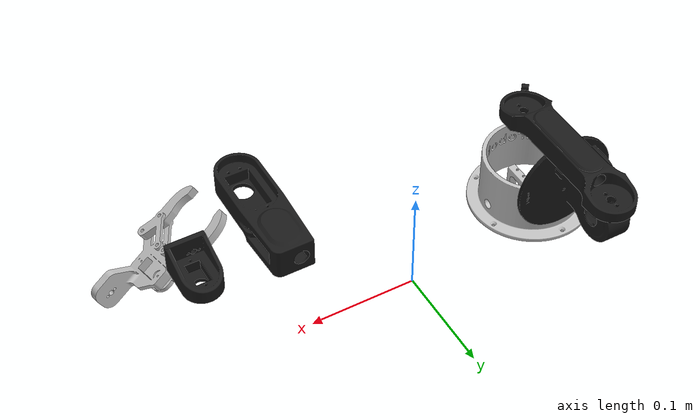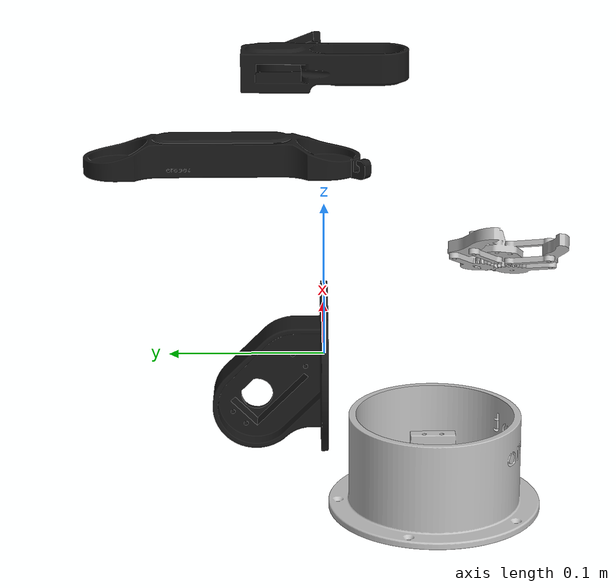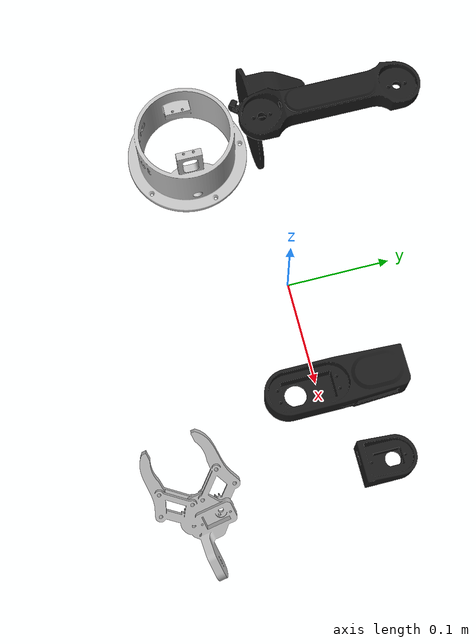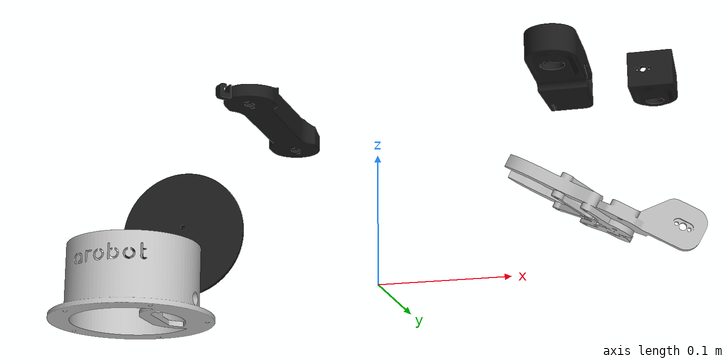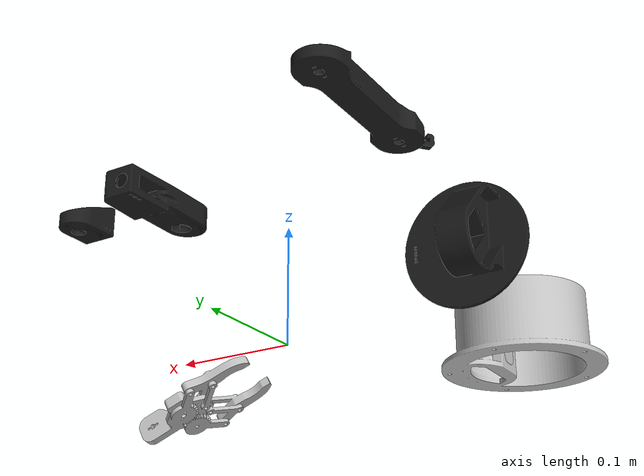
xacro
<?xml version="1.0"?>

<robot name="bot_6dof"
       xmlns:xacro="http://www.ros.org/wiki/xacro">

  <!-- MATERIALS -->

  <material name="black">
    <color rgba="0.1 0.1 0.1 1.0"/>
  </material>

  <material name="silver">
    <color rgba="0.75 0.75 0.75 1.0"/>
  </material>

  <!-- BASE LINK -->

  <link name="base_link">

    <visual>

      <origin xyz="0 0 0"
              rpy="0 0 0"/>

      <geometry>
        <mesh filename="package://bot_description/meshes/base_link.stl"
              scale="0.001 0.001 0.001"/>
      </geometry>

      <material name="silver"/>

    </visual>

  </link>

  <!-- SHOULDER LINK -->

  <link name="shoulder_link">

    <visual>

      <!-- reset mesh offset -->
      <origin xyz="0 0 0"
              rpy="0 0 0"/>

      <geometry>
        <mesh filename="package://bot_description/meshes/shoulder_link.stl"
              scale="0.001 0.001 0.001"/>
      </geometry>

      <material name="black"/>

    </visual>

  </link>

  <!-- UPPER ARM -->

  <link name="upper_arm_link">

    <visual>

      <!-- reset mesh offset -->
      <origin xyz="0 0 0"
              rpy="0 0 0"/>

      <geometry>
        <mesh filename="package://bot_description/meshes/upper_arm_link.stl"
              scale="0.001 0.001 0.001"/>
      </geometry>

      <material name="black"/>

    </visual>

  </link>

  <!-- FOREARM -->

  <link name="forearm_link">

    <visual>

      <!-- reset mesh offset -->
      <origin xyz="0 0 0"
              rpy="0 0 0"/>

      <geometry>
        <mesh filename="package://bot_description/meshes/forearm_link.stl"
              scale="0.001 0.001 0.001"/>
      </geometry>

      <material name="black"/>

    </visual>

  </link>

  <!-- WRIST -->

  <link name="wrist_link">

    <visual>

      <!-- reset mesh offset -->
      <origin xyz="0 0 0"
              rpy="0 0 0"/>

      <geometry>
        <mesh filename="package://bot_description/meshes/wrist_link.stl"
              scale="0.001 0.001 0.001"/>
      </geometry>

      <material name="black"/>

    </visual>

  </link>

  <!-- GRIPPER -->

  <link name="gripper_link">

    <visual>

      <!-- reset mesh offset -->
      <origin xyz="0 0 0"
              rpy="0 0 0"/>

      <geometry>
        <mesh filename="package://bot_description/meshes/gripper_assembly.stl"
              scale="0.001 0.001 0.001"/>
      </geometry>

      <material name="silver"/>

    </visual>

  </link>

  <!-- JOINT 1 -->

  <joint name="joint_1"
         type="revolute">

    <parent link="base_link"/>
    <child link="shoulder_link"/>

    <!-- base height -->
    <origin xyz="0 0 0.050"
            rpy="0 0 0"/>

    <axis xyz="0 0 1"/>

    <limit lower="-3.14"
           upper="3.14"
           effort="20"
           velocity="1"/>

  </joint>

  <!-- JOINT 2 -->

  <joint name="joint_2"
         type="revolute">

    <parent link="shoulder_link"/>
    <child link="upper_arm_link"/>

    <!-- shoulder elevation -->
    <origin xyz="0 0 0.100"
            rpy="0 0 0"/>

    <axis xyz="0 1 0"/>

    <limit lower="-1.57"
           upper="1.57"
           effort="20"
           velocity="1"/>

  </joint>

  <!-- JOINT 3 -->

  <joint name="joint_3"
         type="revolute">

    <parent link="upper_arm_link"/>
    <child link="forearm_link"/>

    <!-- upper arm length -->
    <origin xyz="0.140 0 0"
            rpy="0 0 0"/>

    <axis xyz="0 1 0"/>

    <limit lower="-1.57"
           upper="1.57"
           effort="20"
           velocity="1"/>

  </joint>

  <!-- JOINT 4 -->

  <joint name="joint_4"
         type="revolute">

    <parent link="forearm_link"/>
    <child link="wrist_link"/>

    <!-- forearm length -->
    <origin xyz="0.130 0 0"
            rpy="0 0 0"/>

    <axis xyz="0 1 0"/>

    <limit lower="-1.57"
           upper="1.57"
           effort="20"
           velocity="1"/>

  </joint>

  <!-- JOINT 5 -->

  <joint name="joint_5"
         type="revolute">

    <parent link="wrist_link"/>
    <child link="gripper_link"/>

    <!-- wrist offset -->
    <origin xyz="0.060 0 0"
            rpy="0 0 0"/>

    <axis xyz="1 0 0"/>

    <limit lower="-1.57"
           upper="1.57"
           effort="20"
           velocity="1"/>

  </joint>

</robot>
